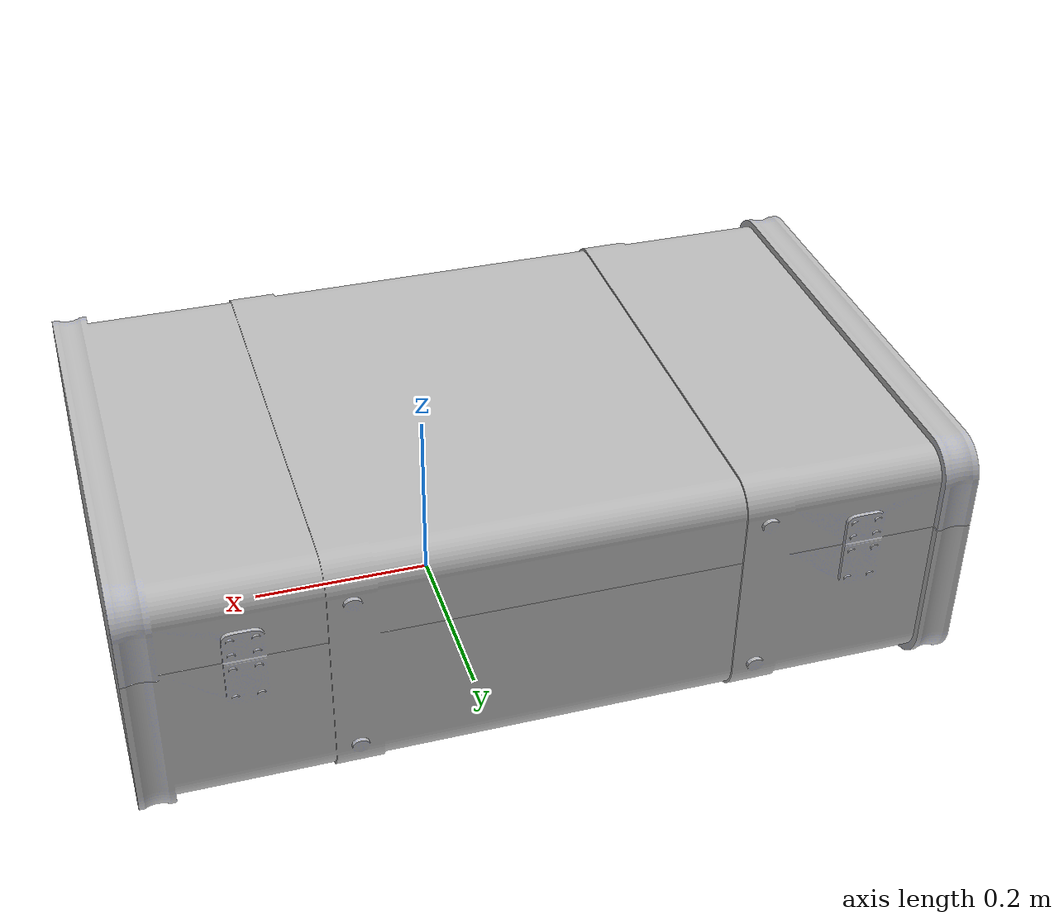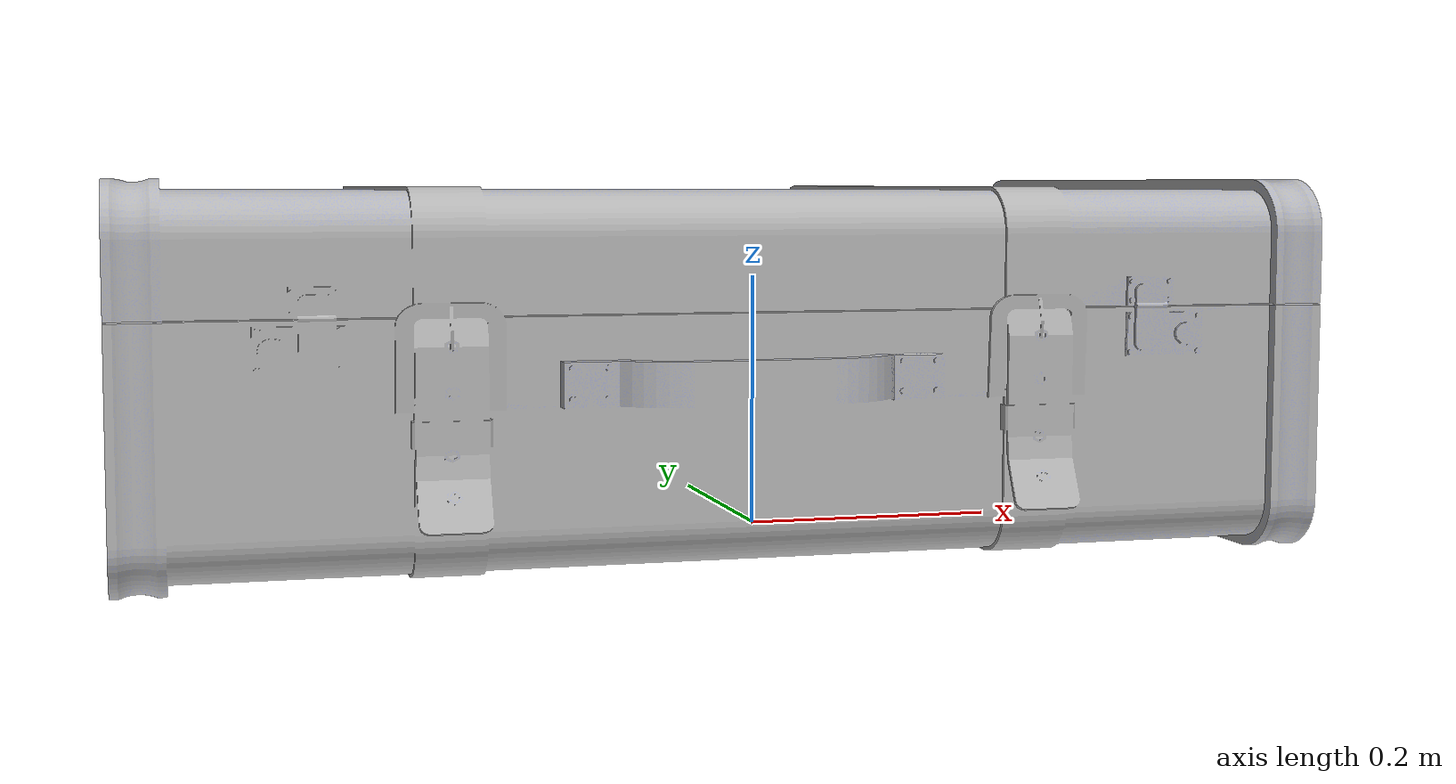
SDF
<?xml version="1.0" ?>
<sdf version="1.5">
  <model name="Suitcase">
    <static>true</static>
    <link name="link">
      <pose degrees="true">-0.5 -0.25 0 0 0 0</pose>
      <visual name="visual">
        <geometry>
          <mesh>
            <uri>model://suitcase_0/model.dae</uri>
          </mesh>
        </geometry>
      </visual>
    </link>
  </model>
</sdf>
